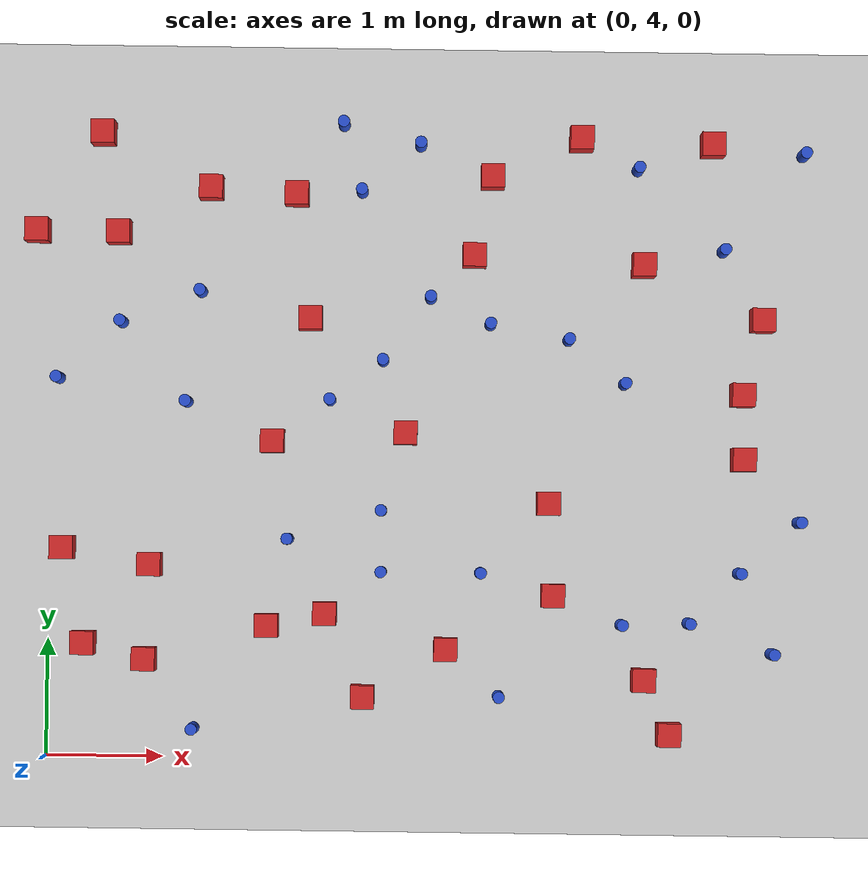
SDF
<sdf version="1.6">
 <world name="default">
  <model name="ground_plane">
   <static>1</static>
   <link name="link">
    <collision name="collision">
     <geometry><plane><normal>0 0 1</normal><size>100 100</size></plane></geometry>
     <surface><friction><ode><mu>100</mu><mu2>50</mu2></ode></friction></surface>
    </collision>
    <visual name="visual">
     <cast_shadows>0</cast_shadows>
     <geometry><plane><normal>0 0 1</normal><size>100 100</size></plane></geometry>
     <material>
      <ambient>1.0 1.0 1.0 1.0</ambient>
      <diffuse>0.8 0.8 0.8 1.0</diffuse>
      <specular>0.01 0.01 0.01 1.000000</specular>
     </material>
    </visual>
   </link>
  </model>
  <model name="square_post_obstacle4">
   <static>true</static>
   <pose>0.572634909686 8.47623324457 1.91545236811e-07 -7.35059704564e-06 1.12565212e-07 2.39332434364e-05</pose>
   <link name="link">
    <pose>0 0 0.25 0 -0 0</pose>
    <inertial>
     <mass>100</mass>
     <inertia>
      <ixx>0.166667</ixx>
      <ixy>0</ixy>
      <ixz>0</ixz>
      <iyy>0.166667</iyy>
      <iyz>0</iyz>
      <izz>0.166667</izz>
     </inertia>
    </inertial>
    <collision name="collision"><geometry><box><size>.2 .2 .5</size></box></geometry></collision>
    <visual name="visual">
     <geometry><box><size>.2 .2 .5</size></box></geometry>
     <material>
      <script><name>Gazebo/Red</name><uri>file://media/materials/scripts/gazebo.material</uri></script>
     </material>
    </visual>
   </link>
  </model>
  <model name="square_post_obstacle6">
   <static>true</static>
   <pose>6.07012027217 7.79217933914 1.91545236811e-07 -7.35059704564e-06 1.12565212e-07 2.39332434364e-05</pose>
   <link name="link">
    <pose>0 0 0.25 0 -0 0</pose>
    <inertial>
     <mass>100</mass>
     <inertia>
      <ixx>0.166667</ixx>
      <ixy>0</ixy>
      <ixz>0</ixz>
      <iyy>0.166667</iyy>
      <iyz>0</iyz>
      <izz>0.166667</izz>
     </inertia>
    </inertial>
    <collision name="collision"><geometry><box><size>.2 .2 .5</size></box></geometry></collision>
    <visual name="visual">
     <geometry><box><size>.2 .2 .5</size></box></geometry>
     <material>
      <script><name>Gazebo/Red</name><uri>file://media/materials/scripts/gazebo.material</uri></script>
     </material>
    </visual>
   </link>
  </model>
  <model name="square_post_obstacle18">
   <static>true</static>
   <pose>1.35517018859 8.86539463981 1.91545236811e-07 -7.35059704564e-06 1.12565212e-07 2.39332434364e-05</pose>
   <link name="link">
    <pose>0 0 0.25 0 -0 0</pose>
    <inertial>
     <mass>100</mass>
     <inertia>
      <ixx>0.166667</ixx>
      <ixy>0</ixy>
      <ixz>0</ixz>
      <iyy>0.166667</iyy>
      <iyz>0</iyz>
      <izz>0.166667</izz>
     </inertia>
    </inertial>
    <collision name="collision"><geometry><box><size>.2 .2 .5</size></box></geometry></collision>
    <visual name="visual">
     <geometry><box><size>.2 .2 .5</size></box></geometry>
     <material>
      <script><name>Gazebo/Red</name><uri>file://media/materials/scripts/gazebo.material</uri></script>
     </material>
    </visual>
   </link>
  </model>
  <model name="pole_obstacle10">
   <static>true</static>
   <pose>0.0678419629174 7.22981493726 7.38925637345e-09 -8.47170692798e-08 1.24976765034e-08 -1.74513093019e-07</pose>
   <link name="link">
    <pose>0 0 0.3 0 -0 0</pose>
    <inertial>
     <mass>1</mass>
     <inertia><ixx>0.145833</ixx><ixy>0</ixy><ixz>0</ixz><iyy>0.145833</iyy><iyz>0</iyz><izz>0.125</izz></inertia>
    </inertial>
    <collision name="collision">
     <geometry><cylinder><radius>0.05</radius><length>.6</length></cylinder></geometry>
    </collision>
    <visual name="visual">
     <geometry><cylinder><radius>0.05</radius><length>.6</length></cylinder></geometry>
     <material>
      <script><name>Gazebo/Blue</name><uri>file://media/materials/scripts/gazebo.material</uri></script>
     </material>
    </visual>
   </link>
  </model>
  <model name="pole_obstacle14">
   <static>true</static>
   <pose>3.74941363248 7.73118387174 7.38925637345e-09 -8.47170692798e-08 1.24976765033e-08 -1.74513093019e-07</pose>
   <link name="link">
    <pose>0 0 0.3 0 -0 0</pose>
    <inertial>
     <mass>1</mass>
     <inertia><ixx>0.145833</ixx><ixy>0</ixy><ixz>0</ixz><iyy>0.145833</iyy><iyz>0</iyz><izz>0.125</izz></inertia>
    </inertial>
    <collision name="collision">
     <geometry><cylinder><radius>0.05</radius><length>.6</length></cylinder></geometry>
    </collision>
    <visual name="visual">
     <geometry><cylinder><radius>0.05</radius><length>.6</length></cylinder></geometry>
     <material>
      <script><name>Gazebo/Blue</name><uri>file://media/materials/scripts/gazebo.material</uri></script>
     </material>
    </visual>
   </link>
  </model>
  <model name="pole_obstacle15">
   <static>true</static>
   <pose>3.85585728845 4.5579264264 7.38925637345e-09 -8.47170692798e-08 1.24976765033e-08 -1.74513093019e-07</pose>
   <link name="link">
    <pose>0 0 0.3 0 -0 0</pose>
    <inertial>
     <mass>1</mass>
     <inertia><ixx>0.145833</ixx><ixy>0</ixy><ixz>0</ixz><iyy>0.145833</iyy><iyz>0</iyz><izz>0.125</izz></inertia>
    </inertial>
    <collision name="collision">
     <geometry><cylinder><radius>0.05</radius><length>.6</length></cylinder></geometry>
    </collision>
    <visual name="visual">
     <geometry><cylinder><radius>0.05</radius><length>.6</length></cylinder></geometry>
     <material>
      <script><name>Gazebo/Blue</name><uri>file://media/materials/scripts/gazebo.material</uri></script>
     </material>
    </visual>
   </link>
  </model>
  <model name="pole_obstacle17">
   <static>true</static>
   <pose>3.23747490459 7.95277606174 7.38925637345e-09 -8.47170692799e-08 1.24976765031e-08 -1.7451309302e-07</pose>
   <link name="link">
    <pose>0 0 0.3 0 -0 0</pose>
    <inertial>
     <mass>1</mass>
     <inertia><ixx>0.145833</ixx><ixy>0</ixy><ixz>0</ixz><iyy>0.145833</iyy><iyz>0</iyz><izz>0.125</izz></inertia>
    </inertial>
    <collision name="collision">
     <geometry><cylinder><radius>0.05</radius><length>.6</length></cylinder></geometry>
    </collision>
    <visual name="visual">
     <geometry><cylinder><radius>0.05</radius><length>.6</length></cylinder></geometry>
     <material>
      <script><name>Gazebo/Blue</name><uri>file://media/materials/scripts/gazebo.material</uri></script>
     </material>
    </visual>
   </link>
  </model>
  <model name="square_post_obstacle24">
   <static>true</static>
   <pose>3.75183086267 8.98769053408 1.91545236811e-07 -7.35059704564e-06 1.12565212e-07 2.39332434364e-05</pose>
   <link name="link">
    <pose>0 0 0.25 0 -0 0</pose>
    <inertial>
     <mass>100</mass>
     <inertia>
      <ixx>0.166667</ixx>
      <ixy>0</ixy>
      <ixz>0</ixz>
      <iyy>0.166667</iyy>
      <iyz>0</iyz>
      <izz>0.166667</izz>
     </inertia>
    </inertial>
    <collision name="collision"><geometry><box><size>.2 .2 .5</size></box></geometry></collision>
    <visual name="visual">
     <geometry><box><size>.2 .2 .5</size></box></geometry>
     <material>
      <script><name>Gazebo/Red</name><uri>file://media/materials/scripts/gazebo.material</uri></script>
     </material>
    </visual>
   </link>
  </model>
  <model name="pole_obstacle24">
   <static>true</static>
   <pose>2.64034792361 8.85395301575 7.38925637345e-09 -8.47170692793e-08 1.24976764408e-08 -1.74513093041e-07</pose>
   <link name="link">
    <pose>0 0 0.3 0 -0 0</pose>
    <inertial>
     <mass>1</mass>
     <inertia><ixx>0.145833</ixx><ixy>0</ixy><ixz>0</ixz><iyy>0.145833</iyy><iyz>0</iyz><izz>0.125</izz></inertia>
    </inertial>
    <collision name="collision">
     <geometry><cylinder><radius>0.05</radius><length>.6</length></cylinder></geometry>
    </collision>
    <visual name="visual">
     <geometry><cylinder><radius>0.05</radius><length>.6</length></cylinder></geometry>
     <material>
      <script><name>Gazebo/Blue</name><uri>file://media/materials/scripts/gazebo.material</uri></script>
     </material>
    </visual>
   </link>
  </model>
  <model name="square_post_obstacle32">
   <static>true</static>
   <pose>3.60511301633 8.31494364576 1.91545236811e-07 -7.35059704564e-06 1.12565212e-07 2.39332434364e-05</pose>
   <link name="link">
    <pose>0 0 0.25 0 -0 0</pose>
    <inertial>
     <mass>100</mass>
     <inertia>
      <ixx>0.166667</ixx>
      <ixy>0</ixy>
      <ixz>0</ixz>
      <iyy>0.166667</iyy>
      <iyz>0</iyz>
      <izz>0.166667</izz>
     </inertia>
    </inertial>
    <collision name="collision"><geometry><box><size>.2 .2 .5</size></box></geometry></collision>
    <visual name="visual">
     <geometry><box><size>.2 .2 .5</size></box></geometry>
     <material>
      <script><name>Gazebo/Red</name><uri>file://media/materials/scripts/gazebo.material</uri></script>
     </material>
    </visual>
   </link>
  </model>
  <model name="square_post_obstacle34">
   <static>true</static>
   <pose>2.21470777761 7.76151485053 1.91545236811e-07 -7.35059704564e-06 1.12565212e-07 2.39332434364e-05</pose>
   <link name="link">
    <pose>0 0 0.25 0 -0 0</pose>
    <inertial>
     <mass>100</mass>
     <inertia>
      <ixx>0.166667</ixx>
      <ixy>0</ixy>
      <ixz>0</ixz>
      <iyy>0.166667</iyy>
      <iyz>0</iyz>
      <izz>0.166667</izz>
     </inertia>
    </inertial>
    <collision name="collision"><geometry><box><size>.2 .2 .5</size></box></geometry></collision>
    <visual name="visual">
     <geometry><box><size>.2 .2 .5</size></box></geometry>
     <material>
      <script><name>Gazebo/Red</name><uri>file://media/materials/scripts/gazebo.material</uri></script>
     </material>
    </visual>
   </link>
  </model>
  <model name="pole_obstacle33">
   <static>true</static>
   <pose>4.89822211064 5.18050842229 7.38925637345e-09 -8.47170692796e-08 1.24976764786e-08 -1.74513093032e-07</pose>
   <link name="link">
    <pose>0 0 0.3 0 -0 0</pose>
    <inertial>
     <mass>1</mass>
     <inertia><ixx>0.145833</ixx><ixy>0</ixy><ixz>0</ixz><iyy>0.145833</iyy><iyz>0</iyz><izz>0.125</izz></inertia>
    </inertial>
    <collision name="collision">
     <geometry><cylinder><radius>0.05</radius><length>.6</length></cylinder></geometry>
    </collision>
    <visual name="visual">
     <geometry><cylinder><radius>0.05</radius><length>.6</length></cylinder></geometry>
     <material>
      <script><name>Gazebo/Blue</name><uri>file://media/materials/scripts/gazebo.material</uri></script>
     </material>
    </visual>
   </link>
  </model>
  <model name="square_post_obstacle35">
   <static>true</static>
   <pose>0.870610285749 5.64596666037 1.91545236811e-07 -7.35059704564e-06 1.12565212e-07 2.39332434364e-05</pose>
   <link name="link">
    <pose>0 0 0.25 0 -0 0</pose>
    <inertial>
     <mass>100</mass>
     <inertia>
      <ixx>0.166667</ixx>
      <ixy>0</ixy>
      <ixz>0</ixz>
      <iyy>0.166667</iyy>
      <iyz>0</iyz>
      <izz>0.166667</izz>
     </inertia>
    </inertial>
    <collision name="collision"><geometry><box><size>.2 .2 .5</size></box></geometry></collision>
    <visual name="visual">
     <geometry><box><size>.2 .2 .5</size></box></geometry>
     <material>
      <script><name>Gazebo/Red</name><uri>file://media/materials/scripts/gazebo.material</uri></script>
     </material>
    </visual>
   </link>
  </model>
  <model name="pole_obstacle41">
   <static>true</static>
   <pose>6.40373045688 6.07270942655 7.38925637345e-09 -8.47170692796e-08 1.24976764786e-08 -1.74513093032e-07</pose>
   <link name="link">
    <pose>0 0 0.3 0 -0 0</pose>
    <inertial>
     <mass>1</mass>
     <inertia><ixx>0.145833</ixx><ixy>0</ixy><ixz>0</ixz><iyy>0.145833</iyy><iyz>0</iyz><izz>0.125</izz></inertia>
    </inertial>
    <collision name="collision">
     <geometry><cylinder><radius>0.05</radius><length>.6</length></cylinder></geometry>
    </collision>
    <visual name="visual">
     <geometry><cylinder><radius>0.05</radius><length>.6</length></cylinder></geometry>
     <material>
      <script><name>Gazebo/Blue</name><uri>file://media/materials/scripts/gazebo.material</uri></script>
     </material>
    </visual>
   </link>
  </model>
  <model name="square_post_obstacle42">
   <static>true</static>
   <pose>4.26219001201 6.20647170533 1.91545236811e-07 -7.35059704564e-06 1.12565212e-07 2.39332434364e-05</pose>
   <link name="link">
    <pose>0 0 0.25 0 -0 0</pose>
    <inertial>
     <mass>100</mass>
     <inertia>
      <ixx>0.166667</ixx>
      <ixy>0</ixy>
      <ixz>0</ixz>
      <iyy>0.166667</iyy>
      <iyz>0</iyz>
      <izz>0.166667</izz>
     </inertia>
    </inertial>
    <collision name="collision"><geometry><box><size>.2 .2 .5</size></box></geometry></collision>
    <visual name="visual">
     <geometry><box><size>.2 .2 .5</size></box></geometry>
     <material>
      <script><name>Gazebo/Red</name><uri>file://media/materials/scripts/gazebo.material</uri></script>
     </material>
    </visual>
   </link>
  </model>
  <model name="square_post_obstacle47">
   <static>true</static>
   <pose>3.39966079267 4.9541920747 1.91545236811e-07 -7.35059704564e-06 1.12565212e-07 2.39332434364e-05</pose>
   <link name="link">
    <pose>0 0 0.25 0 -0 0</pose>
    <inertial>
     <mass>100</mass>
     <inertia>
      <ixx>0.166667</ixx>
      <ixy>0</ixy>
      <ixz>0</ixz>
      <iyy>0.166667</iyy>
      <iyz>0</iyz>
      <izz>0.166667</izz>
     </inertia>
    </inertial>
    <collision name="collision"><geometry><box><size>.2 .2 .5</size></box></geometry></collision>
    <visual name="visual">
     <geometry><box><size>.2 .2 .5</size></box></geometry>
     <material>
      <script><name>Gazebo/Red</name><uri>file://media/materials/scripts/gazebo.material</uri></script>
     </material>
    </visual>
   </link>
  </model>
  <model name="square_post_obstacle58">
   <static>true</static>
   <pose>5.6267987311 9.2843497926 1.91545236811e-07 -7.35059704564e-06 1.12565212e-07 2.39332434364e-05</pose>
   <link name="link">
    <pose>0 0 0.25 0 -0 0</pose>
    <inertial>
     <mass>100</mass>
     <inertia>
      <ixx>0.166667</ixx>
      <ixy>0</ixy>
      <ixz>0</ixz>
      <iyy>0.166667</iyy>
      <iyz>0</iyz>
      <izz>0.166667</izz>
     </inertia>
    </inertial>
    <collision name="collision"><geometry><box><size>.2 .2 .5</size></box></geometry></collision>
    <visual name="visual">
     <geometry><box><size>.2 .2 .5</size></box></geometry>
     <material>
      <script><name>Gazebo/Red</name><uri>file://media/materials/scripts/gazebo.material</uri></script>
     </material>
    </visual>
   </link>
  </model>
  <model name="pole_obstacle62">
   <static>true</static>
   <pose>2.04230339649 5.87880035462 7.38925637345e-09 -8.47170692799e-08 1.24976765014e-08 -1.7451309302e-07</pose>
   <link name="link">
    <pose>0 0 0.3 0 -0 0</pose>
    <inertial>
     <mass>1</mass>
     <inertia><ixx>0.145833</ixx><ixy>0</ixy><ixz>0</ixz><iyy>0.145833</iyy><iyz>0</iyz><izz>0.125</izz></inertia>
    </inertial>
    <collision name="collision">
     <geometry><cylinder><radius>0.05</radius><length>.6</length></cylinder></geometry>
    </collision>
    <visual name="visual">
     <geometry><cylinder><radius>0.05</radius><length>.6</length></cylinder></geometry>
     <material>
      <script><name>Gazebo/Blue</name><uri>file://media/materials/scripts/gazebo.material</uri></script>
     </material>
    </visual>
   </link>
  </model>
  <model name="square_post_obstacle72">
   <static>true</static>
   <pose>3.03694377907 6.79380521116 1.91545236811e-07 -7.35059704564e-06 1.12565212e-07 2.39332434364e-05</pose>
   <link name="link">
    <pose>0 0 0.25 0 -0 0</pose>
    <inertial>
     <mass>100</mass>
     <inertia>
      <ixx>0.166667</ixx>
      <ixy>0</ixy>
      <ixz>0</ixz>
      <iyy>0.166667</iyy>
      <iyz>0</iyz>
      <izz>0.166667</izz>
     </inertia>
    </inertial>
    <collision name="collision"><geometry><box><size>.2 .2 .5</size></box></geometry></collision>
    <visual name="visual">
     <geometry><box><size>.2 .2 .5</size></box></geometry>
     <material>
      <script><name>Gazebo/Red</name><uri>file://media/materials/scripts/gazebo.material</uri></script>
     </material>
    </visual>
   </link>
  </model>
  <model name="pole_obstacle76">
   <static>true</static>
   <pose>2.84151448076 5.6063032679 7.38925637345e-09 -8.47170692798e-08 1.24976765033e-08 -1.74513093019e-07</pose>
   <link name="link">
    <pose>0 0 0.3 0 -0 0</pose>
    <inertial>
     <mass>1</mass>
     <inertia><ixx>0.145833</ixx><ixy>0</ixy><ixz>0</ixz><iyy>0.145833</iyy><iyz>0</iyz><izz>0.125</izz></inertia>
    </inertial>
    <collision name="collision">
     <geometry><cylinder><radius>0.05</radius><length>.6</length></cylinder></geometry>
    </collision>
    <visual name="visual">
     <geometry><cylinder><radius>0.05</radius><length>.6</length></cylinder></geometry>
     <material>
      <script><name>Gazebo/Blue</name><uri>file://media/materials/scripts/gazebo.material</uri></script>
     </material>
    </visual>
   </link>
  </model>
  <model name="square_post_obstacle79">
   <static>true</static>
   <pose>1.87213606577 5.1371913774 1.91545236811e-07 -7.35059704564e-06 1.12565212e-07 2.39332434364e-05</pose>
   <link name="link">
    <pose>0 0 0.25 0 -0 0</pose>
    <inertial>
     <mass>100</mass>
     <inertia>
      <ixx>0.166667</ixx>
      <ixy>0</ixy>
      <ixz>0</ixz>
      <iyy>0.166667</iyy>
      <iyz>0</iyz>
      <izz>0.166667</izz>
     </inertia>
    </inertial>
    <collision name="collision"><geometry><box><size>.2 .2 .5</size></box></geometry></collision>
    <visual name="visual">
     <geometry><box><size>.2 .2 .5</size></box></geometry>
     <material>
      <script><name>Gazebo/Red</name><uri>file://media/materials/scripts/gazebo.material</uri></script>
     </material>
    </visual>
   </link>
  </model>
  <model name="pole_obstacle84">
   <static>true</static>
   <pose>3.13593558141 9.2571178459 7.38925637345e-09 -8.47170692793e-08 1.24976764408e-08 -1.74513093041e-07</pose>
   <link name="link">
    <pose>0 0 0.3 0 -0 0</pose>
    <inertial>
     <mass>1</mass>
     <inertia><ixx>0.145833</ixx><ixy>0</ixy><ixz>0</ixz><iyy>0.145833</iyy><iyz>0</iyz><izz>0.125</izz></inertia>
    </inertial>
    <collision name="collision">
     <geometry><cylinder><radius>0.05</radius><length>.6</length></cylinder></geometry>
    </collision>
    <visual name="visual">
     <geometry><cylinder><radius>0.05</radius><length>.6</length></cylinder></geometry>
     <material>
      <script><name>Gazebo/Blue</name><uri>file://media/materials/scripts/gazebo.material</uri></script>
     </material>
    </visual>
   </link>
  </model>
  <model name="square_post_obstacle81">
   <static>true</static>
   <pose>5.92010506559 6.60127165198 1.91545236811e-07 -7.35059704564e-06 1.12565212e-07 2.39332434364e-05</pose>
   <link name="link">
    <pose>0 0 0.25 0 -0 0</pose>
    <inertial>
     <mass>100</mass>
     <inertia>
      <ixx>0.166667</ixx>
      <ixy>0</ixy>
      <ixz>0</ixz>
      <iyy>0.166667</iyy>
      <iyz>0</iyz>
      <izz>0.166667</izz>
     </inertia>
    </inertial>
    <collision name="collision"><geometry><box><size>.2 .2 .5</size></box></geometry></collision>
    <visual name="visual">
     <geometry><box><size>.2 .2 .5</size></box></geometry>
     <material>
      <script><name>Gazebo/Red</name><uri>file://media/materials/scripts/gazebo.material</uri></script>
     </material>
    </visual>
   </link>
  </model>
  <model name="pole_obstacle89">
   <static>true</static>
   <pose>0.600701817979 7.7143868838 7.38925637345e-09 -8.471706928e-08 1.24976765086e-08 -1.74513093015e-07</pose>
   <link name="link">
    <pose>0 0 0.3 0 -0 0</pose>
    <inertial>
     <mass>1</mass>
     <inertia><ixx>0.145833</ixx><ixy>0</ixy><ixz>0</ixz><iyy>0.145833</iyy><iyz>0</iyz><izz>0.125</izz></inertia>
    </inertial>
    <collision name="collision">
     <geometry><cylinder><radius>0.05</radius><length>.6</length></cylinder></geometry>
    </collision>
    <visual name="visual">
     <geometry><cylinder><radius>0.05</radius><length>.6</length></cylinder></geometry>
     <material>
      <script><name>Gazebo/Blue</name><uri>file://media/materials/scripts/gazebo.material</uri></script>
     </material>
    </visual>
   </link>
  </model>
  <model name="pole_obstacle93">
   <static>true</static>
   <pose>1.2547524337 4.25324755997 7.38925637345e-09 -8.47170692799e-08 1.24976765033e-08 -1.74513093018e-07</pose>
   <link name="link">
    <pose>0 0 0.3 0 -0 0</pose>
    <inertial>
     <mass>1</mass>
     <inertia><ixx>0.145833</ixx><ixy>0</ixy><ixz>0</ixz><iyy>0.145833</iyy><iyz>0</iyz><izz>0.125</izz></inertia>
    </inertial>
    <collision name="collision">
     <geometry><cylinder><radius>0.05</radius><length>.6</length></cylinder></geometry>
    </collision>
    <visual name="visual">
     <geometry><cylinder><radius>0.05</radius><length>.6</length></cylinder></geometry>
     <material>
      <script><name>Gazebo/Blue</name><uri>file://media/materials/scripts/gazebo.material</uri></script>
     </material>
    </visual>
   </link>
  </model>
  <model name="square_post_obstacle87">
   <static>true</static>
   <pose>4.50670449903 9.32160879238 1.91545236811e-07 -7.35059704564e-06 1.12565212e-07 2.39332434364e-05</pose>
   <link name="link">
    <pose>0 0 0.25 0 -0 0</pose>
    <inertial>
     <mass>100</mass>
     <inertia>
      <ixx>0.166667</ixx>
      <ixy>0</ixy>
      <ixz>0</ixz>
      <iyy>0.166667</iyy>
      <iyz>0</iyz>
      <izz>0.166667</izz>
     </inertia>
    </inertial>
    <collision name="collision"><geometry><box><size>.2 .2 .5</size></box></geometry></collision>
    <visual name="visual">
     <geometry><box><size>.2 .2 .5</size></box></geometry>
     <material>
      <script><name>Gazebo/Red</name><uri>file://media/materials/scripts/gazebo.material</uri></script>
     </material>
    </visual>
   </link>
  </model>
  <model name="pole_obstacle98">
   <static>true</static>
   <pose>1.2760760325 7.98254970868 7.38925637345e-09 -8.47170692799e-08 1.24976764983e-08 -1.74513093021e-07</pose>
   <link name="link">
    <pose>0 0 0.3 0 -0 0</pose>
    <inertial>
     <mass>1</mass>
     <inertia><ixx>0.145833</ixx><ixy>0</ixy><ixz>0</ixz><iyy>0.145833</iyy><iyz>0</iyz><izz>0.125</izz></inertia>
    </inertial>
    <collision name="collision">
     <geometry><cylinder><radius>0.05</radius><length>.6</length></cylinder></geometry>
    </collision>
    <visual name="visual">
     <geometry><cylinder><radius>0.05</radius><length>.6</length></cylinder></geometry>
     <material>
      <script><name>Gazebo/Blue</name><uri>file://media/materials/scripts/gazebo.material</uri></script>
     </material>
    </visual>
   </link>
  </model>
  <model name="pole_obstacle99">
   <static>true</static>
   <pose>2.8375443435 7.41113962299 7.38925637345e-09 -8.47170692798e-08 1.24976765033e-08 -1.74513093019e-07</pose>
   <link name="link">
    <pose>0 0 0.3 0 -0 0</pose>
    <inertial>
     <mass>1</mass>
     <inertia><ixx>0.145833</ixx><ixy>0</ixy><ixz>0</ixz><iyy>0.145833</iyy><iyz>0</iyz><izz>0.125</izz></inertia>
    </inertial>
    <collision name="collision">
     <geometry><cylinder><radius>0.05</radius><length>.6</length></cylinder></geometry>
    </collision>
    <visual name="visual">
     <geometry><cylinder><radius>0.05</radius><length>.6</length></cylinder></geometry>
     <material>
      <script><name>Gazebo/Blue</name><uri>file://media/materials/scripts/gazebo.material</uri></script>
     </material>
    </visual>
   </link>
  </model>
  <model name="pole_obstacle105">
   <static>true</static>
   <pose>4.90135267102 7.23666898213 7.38925637345e-09 -8.47170692796e-08 1.24976764786e-08 -1.74513093032e-07</pose>
   <link name="link">
    <pose>0 0 0.3 0 -0 0</pose>
    <inertial>
     <mass>1</mass>
     <inertia><ixx>0.145833</ixx><ixy>0</ixy><ixz>0</ixz><iyy>0.145833</iyy><iyz>0</iyz><izz>0.125</izz></inertia>
    </inertial>
    <collision name="collision">
     <geometry><cylinder><radius>0.05</radius><length>.6</length></cylinder></geometry>
    </collision>
    <visual name="visual">
     <geometry><cylinder><radius>0.05</radius><length>.6</length></cylinder></geometry>
     <material>
      <script><name>Gazebo/Blue</name><uri>file://media/materials/scripts/gazebo.material</uri></script>
     </material>
    </visual>
   </link>
  </model>
  <model name="pole_obstacle109">
   <static>true</static>
   <pose>6.18810085359 4.94857288733 7.38925637345e-09 -8.47170692796e-08 1.24976764786e-08 -1.74513093032e-07</pose>
   <link name="link">
    <pose>0 0 0.3 0 -0 0</pose>
    <inertial>
     <mass>1</mass>
     <inertia><ixx>0.145833</ixx><ixy>0</ixy><ixz>0</ixz><iyy>0.145833</iyy><iyz>0</iyz><izz>0.125</izz></inertia>
    </inertial>
    <collision name="collision">
     <geometry><cylinder><radius>0.05</radius><length>.6</length></cylinder></geometry>
    </collision>
    <visual name="visual">
     <geometry><cylinder><radius>0.05</radius><length>.6</length></cylinder></geometry>
     <material>
      <script><name>Gazebo/Blue</name><uri>file://media/materials/scripts/gazebo.material</uri></script>
     </material>
    </visual>
   </link>
  </model>
  <model name="square_post_obstacle102">
   <static>true</static>
   <pose>2.36668795599 5.24447649107 1.91545236811e-07 -7.35059704564e-06 1.12565212e-07 2.39332434364e-05</pose>
   <link name="link">
    <pose>0 0 0.25 0 -0 0</pose>
    <inertial>
     <mass>100</mass>
     <inertia>
      <ixx>0.166667</ixx>
      <ixy>0</ixy>
      <ixz>0</ixz>
      <iyy>0.166667</iyy>
      <iyz>0</iyz>
      <izz>0.166667</izz>
     </inertia>
    </inertial>
    <collision name="collision"><geometry><box><size>.2 .2 .5</size></box></geometry></collision>
    <visual name="visual">
     <geometry><box><size>.2 .2 .5</size></box></geometry>
     <material>
      <script><name>Gazebo/Red</name><uri>file://media/materials/scripts/gazebo.material</uri></script>
     </material>
    </visual>
   </link>
  </model>
  <model name="square_post_obstacle103">
   <static>true</static>
   <pose>-0.123318616747 8.48321625039 1.91545236811e-07 -7.35059704564e-06 1.12565212e-07 2.39332434364e-05</pose>
   <link name="link">
    <pose>0 0 0.25 0 -0 0</pose>
    <inertial>
     <mass>100</mass>
     <inertia>
      <ixx>0.166667</ixx>
      <ixy>0</ixy>
      <ixz>0</ixz>
      <iyy>0.166667</iyy>
      <iyz>0</iyz>
      <izz>0.166667</izz>
     </inertia>
    </inertial>
    <collision name="collision"><geometry><box><size>.2 .2 .5</size></box></geometry></collision>
    <visual name="visual">
     <geometry><box><size>.2 .2 .5</size></box></geometry>
     <material>
      <script><name>Gazebo/Red</name><uri>file://media/materials/scripts/gazebo.material</uri></script>
     </material>
    </visual>
   </link>
  </model>
  <model name="pole_obstacle119">
   <static>true</static>
   <pose>5.73138132157 8.38270054535 7.38925637345e-09 -8.471706928e-08 1.24976765081e-08 -1.74513093015e-07</pose>
   <link name="link">
    <pose>0 0 0.3 0 -0 0</pose>
    <inertial>
     <mass>1</mass>
     <inertia><ixx>0.145833</ixx><ixy>0</ixy><ixz>0</ixz><iyy>0.145833</iyy><iyz>0</iyz><izz>0.125</izz></inertia>
    </inertial>
    <collision name="collision">
     <geometry><cylinder><radius>0.05</radius><length>.6</length></cylinder></geometry>
    </collision>
    <visual name="visual">
     <geometry><cylinder><radius>0.05</radius><length>.6</length></cylinder></geometry>
     <material>
      <script><name>Gazebo/Blue</name><uri>file://media/materials/scripts/gazebo.material</uri></script>
     </material>
    </visual>
   </link>
  </model>
  <model name="pole_obstacle120">
   <static>true</static>
   <pose>2.83711198471 6.12962044186 7.38925637345e-09 -8.47170692798e-08 1.24976765033e-08 -1.74513093019e-07</pose>
   <link name="link">
    <pose>0 0 0.3 0 -0 0</pose>
    <inertial>
     <mass>1</mass>
     <inertia><ixx>0.145833</ixx><ixy>0</ixy><ixz>0</ixz><iyy>0.145833</iyy><iyz>0</iyz><izz>0.125</izz></inertia>
    </inertial>
    <collision name="collision">
     <geometry><cylinder><radius>0.05</radius><length>.6</length></cylinder></geometry>
    </collision>
    <visual name="visual">
     <geometry><cylinder><radius>0.05</radius><length>.6</length></cylinder></geometry>
     <material>
      <script><name>Gazebo/Blue</name><uri>file://media/materials/scripts/gazebo.material</uri></script>
     </material>
    </visual>
   </link>
  </model>
  <model name="square_post_obstacle112">
   <static>true</static>
   <pose>1.90298942425 6.71084784109 1.91545236811e-07 -7.35059704564e-06 1.12565212e-07 2.39332434364e-05</pose>
   <link name="link">
    <pose>0 0 0.25 0 -0 0</pose>
    <inertial>
     <mass>100</mass>
     <inertia>
      <ixx>0.166667</ixx>
      <ixy>0</ixy>
      <ixz>0</ixz>
      <iyy>0.166667</iyy>
      <iyz>0</iyz>
      <izz>0.166667</izz>
     </inertia>
    </inertial>
    <collision name="collision"><geometry><box><size>.2 .2 .5</size></box></geometry></collision>
    <visual name="visual">
     <geometry><box><size>.2 .2 .5</size></box></geometry>
     <material>
      <script><name>Gazebo/Red</name><uri>file://media/materials/scripts/gazebo.material</uri></script>
     </material>
    </visual>
   </link>
  </model>
  <model name="pole_obstacle124">
   <static>true</static>
   <pose>4.41966614141 7.60642658865 7.38925637345e-09 -8.47170692796e-08 1.24976764786e-08 -1.74513093032e-07</pose>
   <link name="link">
    <pose>0 0 0.3 0 -0 0</pose>
    <inertial>
     <mass>1</mass>
     <inertia><ixx>0.145833</ixx><ixy>0</ixy><ixz>0</ixz><iyy>0.145833</iyy><iyz>0</iyz><izz>0.125</izz></inertia>
    </inertial>
    <collision name="collision">
     <geometry><cylinder><radius>0.05</radius><length>.6</length></cylinder></geometry>
    </collision>
    <visual name="visual">
     <geometry><cylinder><radius>0.05</radius><length>.6</length></cylinder></geometry>
     <material>
      <script><name>Gazebo/Blue</name><uri>file://media/materials/scripts/gazebo.material</uri></script>
     </material>
    </visual>
   </link>
  </model>
  <model name="square_post_obstacle113">
   <static>true</static>
   <pose>0.428466353661 9.3220177433 1.91545236811e-07 -7.35059704564e-06 1.12565212e-07 2.39332434364e-05</pose>
   <link name="link">
    <pose>0 0 0.25 0 -0 0</pose>
    <inertial>
     <mass>100</mass>
     <inertia>
      <ixx>0.166667</ixx>
      <ixy>0</ixy>
      <ixz>0</ixz>
      <iyy>0.166667</iyy>
      <iyz>0</iyz>
      <izz>0.166667</izz>
     </inertia>
    </inertial>
    <collision name="collision"><geometry><box><size>.2 .2 .5</size></box></geometry></collision>
    <visual name="visual">
     <geometry><box><size>.2 .2 .5</size></box></geometry>
     <material>
      <script><name>Gazebo/Red</name><uri>file://media/materials/scripts/gazebo.material</uri></script>
     </material>
    </visual>
   </link>
  </model>
  <model name="square_post_obstacle119">
   <static>true</static>
   <pose>2.69739049116 4.54201915334 1.91545236811e-07 -7.35059704564e-06 1.12565212e-07 2.39332434364e-05</pose>
   <link name="link">
    <pose>0 0 0.25 0 -0 0</pose>
    <inertial>
     <mass>100</mass>
     <inertia>
      <ixx>0.166667</ixx>
      <ixy>0</ixy>
      <ixz>0</ixz>
      <iyy>0.166667</iyy>
      <iyz>0</iyz>
      <izz>0.166667</izz>
     </inertia>
    </inertial>
    <collision name="collision"><geometry><box><size>.2 .2 .5</size></box></geometry></collision>
    <visual name="visual">
     <geometry><box><size>.2 .2 .5</size></box></geometry>
     <material>
      <script><name>Gazebo/Red</name><uri>file://media/materials/scripts/gazebo.material</uri></script>
     </material>
    </visual>
   </link>
  </model>
  <model name="square_post_obstacle125">
   <static>true</static>
   <pose>5.05124990785 8.25014230116 1.91545236811e-07 -7.35059704564e-06 1.12565212e-07 2.39332434364e-05</pose>
   <link name="link">
    <pose>0 0 0.25 0 -0 0</pose>
    <inertial>
     <mass>100</mass>
     <inertia>
      <ixx>0.166667</ixx>
      <ixy>0</ixy>
      <ixz>0</ixz>
      <iyy>0.166667</iyy>
      <iyz>0</iyz>
      <izz>0.166667</izz>
     </inertia>
    </inertial>
    <collision name="collision"><geometry><box><size>.2 .2 .5</size></box></geometry></collision>
    <visual name="visual">
     <geometry><box><size>.2 .2 .5</size></box></geometry>
     <material>
      <script><name>Gazebo/Red</name><uri>file://media/materials/scripts/gazebo.material</uri></script>
     </material>
    </visual>
   </link>
  </model>
  <model name="square_post_obstacle128">
   <static>true</static>
   <pose>0.310937844537 4.97077437541 1.91545236811e-07 -7.35059704564e-06 1.12565212e-07 2.39332434364e-05</pose>
   <link name="link">
    <pose>0 0 0.25 0 -0 0</pose>
    <inertial>
     <mass>100</mass>
     <inertia>
      <ixx>0.166667</ixx>
      <ixy>0</ixy>
      <ixz>0</ixz>
      <iyy>0.166667</iyy>
      <iyz>0</iyz>
      <izz>0.166667</izz>
     </inertia>
    </inertial>
    <collision name="collision"><geometry><box><size>.2 .2 .5</size></box></geometry></collision>
    <visual name="visual">
     <geometry><box><size>.2 .2 .5</size></box></geometry>
     <material>
      <script><name>Gazebo/Red</name><uri>file://media/materials/scripts/gazebo.material</uri></script>
     </material>
    </visual>
   </link>
  </model>
  <model name="pole_obstacle146">
   <static>true</static>
   <pose>1.16395760719 7.04016717922 7.38925637345e-09 -8.47170692799e-08 1.24976765033e-08 -1.74513093018e-07</pose>
   <link name="link">
    <pose>0 0 0.3 0 -0 0</pose>
    <inertial>
     <mass>1</mass>
     <inertia><ixx>0.145833</ixx><ixy>0</ixy><ixz>0</ixz><iyy>0.145833</iyy><iyz>0</iyz><izz>0.125</izz></inertia>
    </inertial>
    <collision name="collision">
     <geometry><cylinder><radius>0.05</radius><length>.6</length></cylinder></geometry>
    </collision>
    <visual name="visual">
     <geometry><cylinder><radius>0.05</radius><length>.6</length></cylinder></geometry>
     <material>
      <script><name>Gazebo/Blue</name><uri>file://media/materials/scripts/gazebo.material</uri></script>
     </material>
    </visual>
   </link>
  </model>
  <model name="square_post_obstacle139">
   <static>true</static>
   <pose>0.123028429668 5.78000701667 1.91545236811e-07 -7.35059704564e-06 1.12565212e-07 2.39332434364e-05</pose>
   <link name="link">
    <pose>0 0 0.25 0 -0 0</pose>
    <inertial>
     <mass>100</mass>
     <inertia>
      <ixx>0.166667</ixx>
      <ixy>0</ixy>
      <ixz>0</ixz>
      <iyy>0.166667</iyy>
      <iyz>0</iyz>
      <izz>0.166667</izz>
     </inertia>
    </inertial>
    <collision name="collision"><geometry><box><size>.2 .2 .5</size></box></geometry></collision>
    <visual name="visual">
     <geometry><box><size>.2 .2 .5</size></box></geometry>
     <material>
      <script><name>Gazebo/Red</name><uri>file://media/materials/scripts/gazebo.material</uri></script>
     </material>
    </visual>
   </link>
  </model>
  <model name="square_post_obstacle154">
   <static>true</static>
   <pose>4.30853421634 5.42362045533 1.91545236811e-07 -7.35059704564e-06 1.12565212e-07 2.39332434364e-05</pose>
   <link name="link">
    <pose>0 0 0.25 0 -0 0</pose>
    <inertial>
     <mass>100</mass>
     <inertia>
      <ixx>0.166667</ixx>
      <ixy>0</ixy>
      <ixz>0</ixz>
      <iyy>0.166667</iyy>
      <iyz>0</iyz>
      <izz>0.166667</izz>
     </inertia>
    </inertial>
    <collision name="collision"><geometry><box><size>.2 .2 .5</size></box></geometry></collision>
    <visual name="visual">
     <geometry><box><size>.2 .2 .5</size></box></geometry>
     <material>
      <script><name>Gazebo/Red</name><uri>file://media/materials/scripts/gazebo.material</uri></script>
     </material>
    </visual>
   </link>
  </model>
  <model name="square_post_obstacle160">
   <static>true</static>
   <pose>5.08995688791 4.71335426565 1.91545236811e-07 -7.35059704564e-06 1.12565212e-07 2.39332434364e-05</pose>
   <link name="link">
    <pose>0 0 0.25 0 -0 0</pose>
    <inertial>
     <mass>100</mass>
     <inertia>
      <ixx>0.166667</ixx>
      <ixy>0</ixy>
      <ixz>0</ixz>
      <iyy>0.166667</iyy>
      <iyz>0</iyz>
      <izz>0.166667</izz>
     </inertia>
    </inertial>
    <collision name="collision"><geometry><box><size>.2 .2 .5</size></box></geometry></collision>
    <visual name="visual">
     <geometry><box><size>.2 .2 .5</size></box></geometry>
     <material>
      <script><name>Gazebo/Red</name><uri>file://media/materials/scripts/gazebo.material</uri></script>
     </material>
    </visual>
   </link>
  </model>
  <model name="pole_obstacle169">
   <static>true</static>
   <pose>2.47892568851 9.42496359993 7.38925637345e-09 -8.47170692793e-08 1.24976764408e-08 -1.74513093041e-07</pose>
   <link name="link">
    <pose>0 0 0.3 0 -0 0</pose>
    <inertial>
     <mass>1</mass>
     <inertia><ixx>0.145833</ixx><ixy>0</ixy><ixz>0</ixz><iyy>0.145833</iyy><iyz>0</iyz><izz>0.125</izz></inertia>
    </inertial>
    <collision name="collision">
     <geometry><cylinder><radius>0.05</radius><length>.6</length></cylinder></geometry>
    </collision>
    <visual name="visual">
     <geometry><cylinder><radius>0.05</radius><length>.6</length></cylinder></geometry>
     <material>
      <script><name>Gazebo/Blue</name><uri>file://media/materials/scripts/gazebo.material</uri></script>
     </material>
    </visual>
   </link>
  </model>
  <model name="pole_obstacle171">
   <static>true</static>
   <pose>3.69085612372 5.60792571278 7.38925637345e-09 -8.47170692798e-08 1.24976765033e-08 -1.74513093019e-07</pose>
   <link name="link">
    <pose>0 0 0.3 0 -0 0</pose>
    <inertial>
     <mass>1</mass>
     <inertia><ixx>0.145833</ixx><ixy>0</ixy><ixz>0</ixz><iyy>0.145833</iyy><iyz>0</iyz><izz>0.125</izz></inertia>
    </inertial>
    <collision name="collision">
     <geometry><cylinder><radius>0.05</radius><length>.6</length></cylinder></geometry>
    </collision>
    <visual name="visual">
     <geometry><cylinder><radius>0.05</radius><length>.6</length></cylinder></geometry>
     <material>
      <script><name>Gazebo/Blue</name><uri>file://media/materials/scripts/gazebo.material</uri></script>
     </material>
    </visual>
   </link>
  </model>
  <model name="square_post_obstacle167">
   <static>true</static>
   <pose>5.90741962459 7.15335783243 1.91545236811e-07 -7.35059704564e-06 1.12565212e-07 2.39332434364e-05</pose>
   <link name="link">
    <pose>0 0 0.25 0 -0 0</pose>
    <inertial>
     <mass>100</mass>
     <inertia>
      <ixx>0.166667</ixx>
      <ixy>0</ixy>
      <ixz>0</ixz>
      <iyy>0.166667</iyy>
      <iyz>0</iyz>
      <izz>0.166667</izz>
     </inertia>
    </inertial>
    <collision name="collision"><geometry><box><size>.2 .2 .5</size></box></geometry></collision>
    <visual name="visual">
     <geometry><box><size>.2 .2 .5</size></box></geometry>
     <material>
      <script><name>Gazebo/Red</name><uri>file://media/materials/scripts/gazebo.material</uri></script>
     </material>
    </visual>
   </link>
  </model>
  <model name="pole_obstacle183">
   <static>true</static>
   <pose>5.89919098656 5.63196172886 7.38925637345e-09 -8.47170692796e-08 1.24976764786e-08 -1.74513093032e-07</pose>
   <link name="link">
    <pose>0 0 0.3 0 -0 0</pose>
    <inertial>
     <mass>1</mass>
     <inertia><ixx>0.145833</ixx><ixy>0</ixy><ixz>0</ixz><iyy>0.145833</iyy><iyz>0</iyz><izz>0.125</izz></inertia>
    </inertial>
    <collision name="collision">
     <geometry><cylinder><radius>0.05</radius><length>.6</length></cylinder></geometry>
    </collision>
    <visual name="visual">
     <geometry><cylinder><radius>0.05</radius><length>.6</length></cylinder></geometry>
     <material>
      <script><name>Gazebo/Blue</name><uri>file://media/materials/scripts/gazebo.material</uri></script>
     </material>
    </visual>
   </link>
  </model>
  <model name="square_post_obstacle184">
   <static>true</static>
   <pose>0.83306841042 4.84092246983 1.91545236811e-07 -7.35059704564e-06 1.12565212e-07 2.39332434364e-05</pose>
   <link name="link">
    <pose>0 0 0.25 0 -0 0</pose>
    <inertial>
     <mass>100</mass>
     <inertia>
      <ixx>0.166667</ixx>
      <ixy>0</ixy>
      <ixz>0</ixz>
      <iyy>0.166667</iyy>
      <iyz>0</iyz>
      <izz>0.166667</izz>
     </inertia>
    </inertial>
    <collision name="collision"><geometry><box><size>.2 .2 .5</size></box></geometry></collision>
    <visual name="visual">
     <geometry><box><size>.2 .2 .5</size></box></geometry>
     <material>
      <script><name>Gazebo/Red</name><uri>file://media/materials/scripts/gazebo.material</uri></script>
     </material>
    </visual>
   </link>
  </model>
  <model name="square_post_obstacle192">
   <static>true</static>
   <pose>5.3087885326 4.25437724619 1.91545236811e-07 -7.35059704564e-06 1.12565212e-07 2.39332434364e-05</pose>
   <link name="link">
    <pose>0 0 0.25 0 -0 0</pose>
    <inertial>
     <mass>100</mass>
     <inertia>
      <ixx>0.166667</ixx>
      <ixy>0</ixy>
      <ixz>0</ixz>
      <iyy>0.166667</iyy>
      <iyz>0</iyz>
      <izz>0.166667</izz>
     </inertia>
    </inertial>
    <collision name="collision"><geometry><box><size>.2 .2 .5</size></box></geometry></collision>
    <visual name="visual">
     <geometry><box><size>.2 .2 .5</size></box></geometry>
     <material>
      <script><name>Gazebo/Red</name><uri>file://media/materials/scripts/gazebo.material</uri></script>
     </material>
    </visual>
   </link>
  </model>
  <model name="square_post_obstacle196">
   <static>true</static>
   <pose>2.08493305699 8.82222808781 1.91545236811e-07 -7.35059704564e-06 1.12565212e-07 2.39332434364e-05</pose>
   <link name="link">
    <pose>0 0 0.25 0 -0 0</pose>
    <inertial>
     <mass>100</mass>
     <inertia>
      <ixx>0.166667</ixx>
      <ixy>0</ixy>
      <ixz>0</ixz>
      <iyy>0.166667</iyy>
      <iyz>0</iyz>
      <izz>0.166667</izz>
     </inertia>
    </inertial>
    <collision name="collision"><geometry><box><size>.2 .2 .5</size></box></geometry></collision>
    <visual name="visual">
     <geometry><box><size>.2 .2 .5</size></box></geometry>
     <material>
      <script><name>Gazebo/Red</name><uri>file://media/materials/scripts/gazebo.material</uri></script>
     </material>
    </visual>
   </link>
  </model>
  <model name="pole_obstacle198">
   <static>true</static>
   <pose>2.38927025209 7.0695874553 7.38925637345e-09 -8.47170692798e-08 1.24976765033e-08 -1.74513093019e-07</pose>
   <link name="link">
    <pose>0 0 0.3 0 -0 0</pose>
    <inertial>
     <mass>1</mass>
     <inertia><ixx>0.145833</ixx><ixy>0</ixy><ixz>0</ixz><iyy>0.145833</iyy><iyz>0</iyz><izz>0.125</izz></inertia>
    </inertial>
    <collision name="collision">
     <geometry><cylinder><radius>0.05</radius><length>.6</length></cylinder></geometry>
    </collision>
    <visual name="visual">
     <geometry><cylinder><radius>0.05</radius><length>.6</length></cylinder></geometry>
     <material>
      <script><name>Gazebo/Blue</name><uri>file://media/materials/scripts/gazebo.material</uri></script>
     </material>
    </visual>
   </link>
  </model>
  <model name="pole_obstacle199">
   <static>true</static>
   <pose>6.40615593954 9.21076552441 7.38925637345e-09 -8.471706928e-08 1.24976765081e-08 -1.74513093015e-07</pose>
   <link name="link">
    <pose>0 0 0.3 0 -0 0</pose>
    <inertial>
     <mass>1</mass>
     <inertia><ixx>0.145833</ixx><ixy>0</ixy><ixz>0</ixz><iyy>0.145833</iyy><iyz>0</iyz><izz>0.125</izz></inertia>
    </inertial>
    <collision name="collision">
     <geometry><cylinder><radius>0.05</radius><length>.6</length></cylinder></geometry>
    </collision>
    <visual name="visual">
     <geometry><cylinder><radius>0.05</radius><length>.6</length></cylinder></geometry>
     <material>
      <script><name>Gazebo/Blue</name><uri>file://media/materials/scripts/gazebo.material</uri></script>
     </material>
    </visual>
   </link>
  </model>
  <model name="pole_obstacle226">
   <static>true</static>
   <pose>5.47289000957 5.20026002078 7.38925637345e-09 -8.47170692796e-08 1.24976764786e-08 -1.74513093032e-07</pose>
   <link name="link">
    <pose>0 0 0.3 0 -0 0</pose>
    <inertial>
     <mass>1</mass>
     <inertia><ixx>0.145833</ixx><ixy>0</ixy><ixz>0</ixz><iyy>0.145833</iyy><iyz>0</iyz><izz>0.125</izz></inertia>
    </inertial>
    <collision name="collision">
     <geometry><cylinder><radius>0.05</radius><length>.6</length></cylinder></geometry>
    </collision>
    <visual name="visual">
     <geometry><cylinder><radius>0.05</radius><length>.6</length></cylinder></geometry>
     <material>
      <script><name>Gazebo/Blue</name><uri>file://media/materials/scripts/gazebo.material</uri></script>
     </material>
    </visual>
   </link>
  </model>
  <model name="pole_obstacle230">
   <static>true</static>
   <pose>4.99485000957 9.07044002078 7.38925637345e-09 -8.471706928e-08 1.24976765081e-08 -1.74513093015e-07</pose>
   <link name="link">
    <pose>0 0 0.3 0 -0 0</pose>
    <inertial>
     <mass>1</mass>
     <inertia><ixx>0.145833</ixx><ixy>0</ixy><ixz>0</ixz><iyy>0.145833</iyy><iyz>0</iyz><izz>0.125</izz></inertia>
    </inertial>
    <collision name="collision">
     <geometry><cylinder><radius>0.05</radius><length>.6</length></cylinder></geometry>
    </collision>
    <visual name="visual">
     <geometry><cylinder><radius>0.05</radius><length>.6</length></cylinder></geometry>
     <material>
      <script><name>Gazebo/Blue</name><uri>file://media/materials/scripts/gazebo.material</uri></script>
     </material>
    </visual>
   </link>
  </model>
 </world>
</sdf>
